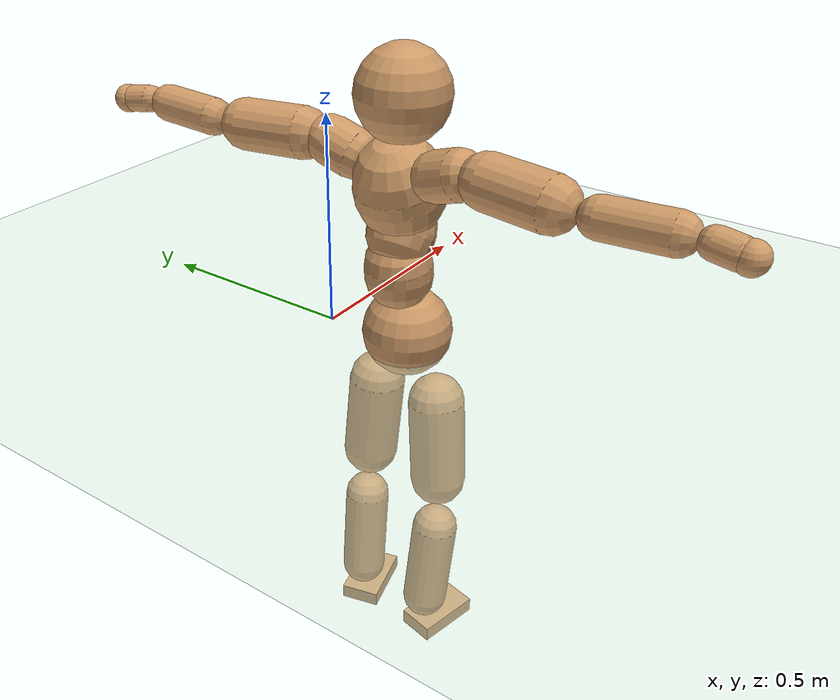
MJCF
<mujoco model="humanoid">
  <compiler coordinate="local"/>
  <default>
    <joint damping="0.0" armature="0.01" stiffness="0.0" limited="true"/>
    <geom conaffinity="1" condim="3" contype="7" margin="0.001" rgba="0.8 0.6 .4 1"/>
  </default>
  <asset>
    <texture type="skybox" builtin="gradient" rgb1=".4 .5 .6" rgb2="0 0 0" width="100" height="100"/>
    <texture builtin="flat" height="1278" mark="cross" markrgb="1 1 1" name="texgeom" random="0.01" rgb1="0.8 0.6 0.4" rgb2="0.8 0.6 0.4" type="cube" width="127"/>
    <texture builtin="checker" height="100" name="texplane" rgb1="0 0 0" rgb2="0.8 0.8 0.8" type="2d" width="100"/>
    <material name="MatPlane" reflectance="0.5" shininess="1" specular="1" texrepeat="60 60" texture="texplane"/>
    <material name="geom" texture="texgeom" texuniform="true"/>
  </asset>
  <worldbody>
    <light cutoff="100" diffuse="1 1 1" dir="-0 0 -1.3" directional="true" exponent="1" pos="0 0 1.3" specular=".1 .1 .1"/>
    <geom conaffinity="1" condim="3" name="floor" pos="0 0 0" rgba="0.8 0.9 0.8 1" size="100 100 .2" type="plane" material="MatPlane"/>
    <body name="Pelvis" pos="-0 -0.2166 0.0436">
      <freejoint name="Pelvis"/>
      <geom type="sphere" contype="1" conaffinity="1" density="500" size="0.1030" pos="0.0000 0.0000 0.0000" name="Pelvis"/>
      <body name="L_Hip" pos="0.0027 0.0787 -0.0914">
        <joint name="L_Hip_x" type="hinge" pos="0 0 0" axis="1 0 0" stiffness="800" damping="80" armature="0.02" range="-180.0000 180.0000"/>
        <joint name="L_Hip_y" type="hinge" pos="0 0 0" axis="0 1 0" stiffness="800" damping="80" armature="0.02" range="-180.0000 180.0000"/>
        <joint name="L_Hip_z" type="hinge" pos="0 0 0" axis="0 0 1" stiffness="800" damping="80" armature="0.02" range="-180.0000 180.0000"/>
        <geom type="capsule" contype="1" conaffinity="1" density="500" fromto="-0.0029 0.0050 -0.0695 -0.0116 0.0201 -0.2781" size="0.0661" name="L_Hip"/>
        <body name="L_Knee" pos="-0.0145 0.0251 -0.3476">
          <joint name="L_Knee_x" type="hinge" pos="0 0 0" axis="1 0 0" stiffness="800" damping="80" armature="0.02" range="-180.0000 180.0000"/>
          <joint name="L_Knee_y" type="hinge" pos="0 0 0" axis="0 1 0" stiffness="800" damping="80" armature="0.02" range="-180.0000 180.0000"/>
          <joint name="L_Knee_z" type="hinge" pos="0 0 0" axis="0 0 1" stiffness="800" damping="80" armature="0.02" range="-180.0000 180.0000"/>
          <geom type="capsule" contype="1" conaffinity="1" density="500" fromto="-0.0090 -0.0019 -0.0730 -0.0359 -0.0074 -0.2921" size="0.0547" name="L_Knee"/>
          <body name="L_Ankle" pos="-0.0449 -0.0093 -0.3651">
            <joint name="L_Ankle_x" type="hinge" pos="0 0 0" axis="1 0 0" stiffness="800" damping="80" armature="0.02" range="-180.0000 180.0000"/>
            <joint name="L_Ankle_y" type="hinge" pos="0 0 0" axis="0 1 0" stiffness="800" damping="80" armature="0.02" range="-180.0000 180.0000"/>
            <joint name="L_Ankle_z" type="hinge" pos="0 0 0" axis="0 0 1" stiffness="800" damping="80" armature="0.02" range="-180.0000 180.0000"/>
            <geom type="box" contype="1" conaffinity="1" density="500" pos="0.0549 0.0140 -0.0266" size="0.0797 0.0484 0.0191" quat="0.9922 0.0000 0.0000 0.1245" name="L_Ankle"/>
            <body name="L_Toe" pos="0.1097 0.028 -0.0531">
              <joint name="L_Toe_x" type="hinge" pos="0 0 0" axis="1 0 0" stiffness="500" damping="50" armature="0.02" range="-180.0000 180.0000"/>
              <joint name="L_Toe_y" type="hinge" pos="0 0 0" axis="0 1 0" stiffness="500" damping="50" armature="0.02" range="-180.0000 180.0000"/>
              <joint name="L_Toe_z" type="hinge" pos="0 0 0" axis="0 0 1" stiffness="500" damping="50" armature="0.02" range="-180.0000 180.0000"/>
              <geom type="box" contype="1" conaffinity="1" density="500" pos="0.0000 0.0000 0.0268" size="0.001 0.0024 0.001" quat="0.9914 0.0000 0.0000 0.1307" name="L_Toe"/>
            </body>
          </body>
        </body>
      </body>
      <body name="R_Hip" pos="0.0046 -0.0766 -0.0918">
        <joint name="R_Hip_x" type="hinge" pos="0 0 0" axis="1 0 0" stiffness="800" damping="80" armature="0.02" range="-180.0000 180.0000"/>
        <joint name="R_Hip_y" type="hinge" pos="0 0 0" axis="0 1 0" stiffness="800" damping="80" armature="0.02" range="-180.0000 180.0000"/>
        <joint name="R_Hip_z" type="hinge" pos="0 0 0" axis="0 0 1" stiffness="800" damping="80" armature="0.02" range="-180.0000 180.0000"/>
        <geom type="capsule" contype="1" conaffinity="1" density="500" fromto="-0.0032 -0.0062 -0.0708 -0.0128 -0.0247 -0.2831" size="0.0654" name="R_Hip"/>
        <body name="R_Knee" pos="-0.016 -0.0309 -0.3539">
          <joint name="R_Knee_x" type="hinge" pos="0 0 0" axis="1 0 0" stiffness="800" damping="80" armature="0.02" range="-180.0000 180.0000"/>
          <joint name="R_Knee_y" type="hinge" pos="0 0 0" axis="0 1 0" stiffness="800" damping="80" armature="0.02" range="-180.0000 180.0000"/>
          <joint name="R_Knee_z" type="hinge" pos="0 0 0" axis="0 0 1" stiffness="800" damping="80" armature="0.02" range="-180.0000 180.0000"/>
          <geom type="capsule" contype="1" conaffinity="1" density="500" fromto="-0.0088 0.0023 -0.0734 -0.0351 0.0091 -0.2935" size="0.0548" name="R_Knee"/>
          <body name="R_Ankle" pos="-0.0439 0.0113 -0.3668">
            <joint name="R_Ankle_x" type="hinge" pos="0 0 0" axis="1 0 0" stiffness="800" damping="80" armature="0.02" range="-180.0000 180.0000"/>
            <joint name="R_Ankle_y" type="hinge" pos="0 0 0" axis="0 1 0" stiffness="800" damping="80" armature="0.02" range="-180.0000 180.0000"/>
            <joint name="R_Ankle_z" type="hinge" pos="0 0 0" axis="0 0 1" stiffness="800" damping="80" armature="0.02" range="-180.0000 180.0000"/>
            <geom type="box" contype="1" conaffinity="1" density="500" pos="0.0567 -0.0126 -0.0227" size="0.08 0.0454 0.0198" quat="0.9941 0.0000 0.0000 -0.1089" name="R_Ankle"/>
            <body name="R_Toe" pos="0.1133 -0.0251 -0.0454">
              <joint name="R_Toe_x" type="hinge" pos="0 0 0" axis="1 0 0" stiffness="500" damping="50" armature="0.02" range="-180.0000 180.0000"/>
              <joint name="R_Toe_y" type="hinge" pos="0 0 0" axis="0 1 0" stiffness="500" damping="50" armature="0.02" range="-180.0000 180.0000"/>
              <joint name="R_Toe_z" type="hinge" pos="0 0 0" axis="0 0 1" stiffness="500" damping="50" armature="0.02" range="-180.0000 180.0000"/>
              <geom type="box" contype="1" conaffinity="1" density="500" pos="0.0000 0.0000 0.0242" size="0.0009 0.0023 0.0011" quat="0.9951 0.0000 0.0000 -0.0988" name="R_Toe"/>
            </body>
          </body>
        </body>
      </body>
      <body name="Torso" pos="-0.0349 -0.0026 0.1064">
        <joint name="Torso_x" type="hinge" pos="0 0 0" axis="1 0 0" stiffness="1000" damping="100" armature="0.02" range="-180.0000 180.0000"/>
        <joint name="Torso_y" type="hinge" pos="0 0 0" axis="0 1 0" stiffness="1000" damping="100" armature="0.02" range="-180.0000 180.0000"/>
        <joint name="Torso_z" type="hinge" pos="0 0 0" axis="0 0 1" stiffness="1000" damping="100" armature="0.02" range="-180.0000 180.0000"/>
        <geom type="capsule" contype="1" conaffinity="1" density="500" fromto="-0.0044 0.0019 0.0738 -0.0029 0.0013 0.0492" size="0.075144" name="Torso"/>
        <body name="Spine" pos="-0.0073 0.0032 0.1229">
          <joint name="Spine_x" type="hinge" pos="0 0 0" axis="1 0 0" stiffness="1000" damping="100" armature="0.02" range="-180.0000 180.0000"/>
          <joint name="Spine_y" type="hinge" pos="0 0 0" axis="0 1 0" stiffness="1000" damping="100" armature="0.02" range="-180.0000 180.0000"/>
          <joint name="Spine_z" type="hinge" pos="0 0 0" axis="0 0 1" stiffness="1000" damping="100" armature="0.02" range="-180.0000 180.0000"/>
          <geom type="capsule" contype="1" conaffinity="1" density="500" fromto="0.0192 0.0012 0.0293 0.0128 0.0008 0.0195" size="0.074865" name="Spine"/>
          <body name="Chest" pos="0.032 0.002 0.0489">
            <joint name="Chest_x" type="hinge" pos="0 0 0" axis="1 0 0" stiffness="1000" damping="100" armature="0.02" range="-180.0000 180.0000"/>
            <joint name="Chest_y" type="hinge" pos="0 0 0" axis="0 1 0" stiffness="1000" damping="100" armature="0.02" range="-180.0000 180.0000"/>
            <joint name="Chest_z" type="hinge" pos="0 0 0" axis="0 0 1" stiffness="1000" damping="100" armature="0.02" range="-180.0000 180.0000"/>
            <geom type="capsule" contype="1" conaffinity="1" density="500" fromto="-0.0284 -0.0002 0.0901 -0.0190 -0.0001 0.0601" size="0.096999" name="Chest"/>
            <body name="Neck" pos="-0.0587 0.0001 0.2081">
              <joint name="Neck_x" type="hinge" pos="0 0 0" axis="1 0 0" stiffness="500" damping="50" armature="0.02" range="-180.0000 180.0000"/>
              <joint name="Neck_y" type="hinge" pos="0 0 0" axis="0 1 0" stiffness="500" damping="50" armature="0.02" range="-180.0000 180.0000"/>
              <joint name="Neck_z" type="hinge" pos="0 0 0" axis="0 0 1" stiffness="500" damping="50" armature="0.02" range="-180.0000 180.0000"/>
              <geom type="capsule" contype="1" conaffinity="1" density="500" fromto="0.0091 0.0001 0.0108 0.0364 0.0003 0.0434" size="0.039339" name="Neck"/>
              <body name="Head" pos="0.0455 0.0004 0.0542">
                <joint name="Head_x" type="hinge" pos="0 0 0" axis="1 0 0" stiffness="500" damping="50" armature="0.02" range="-180.0000 180.0000"/>
                <joint name="Head_y" type="hinge" pos="0 0 0" axis="0 1 0" stiffness="500" damping="50" armature="0.02" range="-180.0000 180.0000"/>
                <joint name="Head_z" type="hinge" pos="0 0 0" axis="0 0 1" stiffness="500" damping="50" armature="0.02" range="-180.0000 180.0000"/>
                <geom type="sphere" contype="1" conaffinity="1" density="500" size="0.1001" pos="0.0000 0.0000 0.0000" name="Head"/>
              </body>
            </body>
            <body name="L_Thorax" pos="-0.0386 0.0833 0.1225">
              <joint name="L_Thorax_x" type="hinge" pos="0 0 0" axis="1 0 0" stiffness="500" damping="50" armature="0.02" range="-180.0000 180.0000"/>
              <joint name="L_Thorax_y" type="hinge" pos="0 0 0" axis="0 1 0" stiffness="500" damping="50" armature="0.02" range="-180.0000 180.0000"/>
              <joint name="L_Thorax_z" type="hinge" pos="0 0 0" axis="0 0 1" stiffness="500" damping="50" armature="0.02" range="-180.0000 180.0000"/>
              <geom type="capsule" contype="1" conaffinity="1" density="500" fromto="-0.0023 0.0179 0.0065 -0.0091 0.0715 0.0259" size="0.0535" name="L_Thorax"/>
              <body name="L_Shoulder" pos="-0.0114 0.0893 0.0324">
                <joint name="L_Shoulder_x" type="hinge" pos="0 0 0" axis="1 0 0" stiffness="500" damping="50" armature="0.02" range="-720.0000 720.0000"/>
                <joint name="L_Shoulder_y" type="hinge" pos="0 0 0" axis="0 1 0" stiffness="500" damping="50" armature="0.02" range="-720.0000 720.0000"/>
                <joint name="L_Shoulder_z" type="hinge" pos="0 0 0" axis="0 0 1" stiffness="500" damping="50" armature="0.02" range="-720.0000 720.0000"/>
                <geom type="capsule" contype="1" conaffinity="1" density="500" fromto="-0.0060 0.0475 -0.0014 -0.0240 0.1902 -0.0057" size="0.056" name="L_Shoulder"/>
                <body name="L_Elbow" pos="-0.0299 0.2377 -0.0072">
                  <joint name="L_Elbow_x" type="hinge" pos="0 0 0" axis="1 0 0" stiffness="500" damping="50" armature="0.02" range="-720.0000 720.0000"/>
                  <joint name="L_Elbow_y" type="hinge" pos="0 0 0" axis="0 1 0" stiffness="500" damping="50" armature="0.02" range="-720.0000 720.0000"/>
                  <joint name="L_Elbow_z" type="hinge" pos="0 0 0" axis="0 0 1" stiffness="500" damping="50" armature="0.02" range="-720.0000 720.0000"/>
                  <geom type="capsule" contype="1" conaffinity="1" density="500" fromto="0.0003 0.0453 0.0018 0.0014 0.1811 0.0070" size="0.0412" name="L_Elbow"/>
                  <body name="L_Wrist" pos="0.0017 0.2263 0.0088">
                    <joint name="L_Wrist_x" type="hinge" pos="0 0 0" axis="1 0 0" stiffness="300" damping="30" armature="0.02" range="-180.0000 180.0000"/>
                    <joint name="L_Wrist_y" type="hinge" pos="0 0 0" axis="0 1 0" stiffness="300" damping="30" armature="0.02" range="-180.0000 180.0000"/>
                    <joint name="L_Wrist_z" type="hinge" pos="0 0 0" axis="0 0 1" stiffness="300" damping="30" armature="0.02" range="-180.0000 180.0000"/>
                    <geom type="capsule" contype="1" conaffinity="1" density="500" fromto="-0.0026 0.0157 -0.0019 -0.0102 0.0627 -0.0075" size="0.0302" name="L_Wrist"/>
                    <body name="L_Hand" pos="-0.0128 0.0783 -0.0093">
                      <joint name="L_Hand_x" type="hinge" pos="0 0 0" axis="1 0 0" stiffness="300" damping="30" armature="0.02" range="-180.0000 180.0000"/>
                      <joint name="L_Hand_y" type="hinge" pos="0 0 0" axis="0 1 0" stiffness="300" damping="30" armature="0.02" range="-180.0000 180.0000"/>
                      <joint name="L_Hand_z" type="hinge" pos="0 0 0" axis="0 0 1" stiffness="300" damping="30" armature="0.02" range="-180.0000 180.0000"/>
                      <geom type="sphere" contype="1" conaffinity="1" density="500" size="0.0318" pos="0.0000 0.0000 0.0000" name="L_Hand"/>
                    </body>
                  </body>
                </body>
              </body>
            </body>
            <body name="R_Thorax" pos="-0.0449 -0.0844 0.1197">
              <joint name="R_Thorax_x" type="hinge" pos="0 0 0" axis="1 0 0" stiffness="500" damping="50" armature="0.02" range="-180.0000 180.0000"/>
              <joint name="R_Thorax_y" type="hinge" pos="0 0 0" axis="0 1 0" stiffness="500" damping="50" armature="0.02" range="-180.0000 180.0000"/>
              <joint name="R_Thorax_z" type="hinge" pos="0 0 0" axis="0 0 1" stiffness="500" damping="50" armature="0.02" range="-180.0000 180.0000"/>
              <geom type="capsule" contype="1" conaffinity="1" density="500" fromto="-0.0029 -0.0188 0.0065 -0.0116 -0.0753 0.0259" size="0.0526" name="R_Thorax"/>
              <body name="R_Shoulder" pos="-0.0145 -0.0941 0.0324">
                <joint name="R_Shoulder_x" type="hinge" pos="0 0 0" axis="1 0 0" stiffness="500" damping="50" armature="0.02" range="-720.0000 720.0000"/>
                <joint name="R_Shoulder_y" type="hinge" pos="0 0 0" axis="0 1 0" stiffness="500" damping="50" armature="0.02" range="-720.0000 720.0000"/>
                <joint name="R_Shoulder_z" type="hinge" pos="0 0 0" axis="0 0 1" stiffness="500" damping="50" armature="0.02" range="-720.0000 720.0000"/>
                <geom type="capsule" contype="1" conaffinity="1" density="500" fromto="-0.0047 -0.0470 -0.0019 -0.0187 -0.1882 -0.0075" size="0.0569" name="R_Shoulder"/>
                <body name="R_Elbow" pos="-0.0234 -0.2352 -0.0094">
                  <joint name="R_Elbow_x" type="hinge" pos="0 0 0" axis="1 0 0" stiffness="500" damping="50" armature="0.02" range="-720.0000 720.0000"/>
                  <joint name="R_Elbow_y" type="hinge" pos="0 0 0" axis="0 1 0" stiffness="500" damping="50" armature="0.02" range="-720.0000 720.0000"/>
                  <joint name="R_Elbow_z" type="hinge" pos="0 0 0" axis="0 0 1" stiffness="500" damping="50" armature="0.02" range="-720.0000 720.0000"/>
                  <geom type="capsule" contype="1" conaffinity="1" density="500" fromto="-0.0000 -0.0466 0.0022 -0.0000 -0.1864 0.0090" size="0.0412" name="R_Elbow"/>
                  <body name="R_Wrist" pos="0 -0.2331 0.0112">
                    <joint name="R_Wrist_x" type="hinge" pos="0 0 0" axis="1 0 0" stiffness="300" damping="30" armature="0.02" range="-180.0000 180.0000"/>
                    <joint name="R_Wrist_y" type="hinge" pos="0 0 0" axis="0 1 0" stiffness="300" damping="30" armature="0.02" range="-180.0000 180.0000"/>
                    <joint name="R_Wrist_z" type="hinge" pos="0 0 0" axis="0 0 1" stiffness="300" damping="30" armature="0.02" range="-180.0000 180.0000"/>
                    <geom type="capsule" contype="1" conaffinity="1" density="500" fromto="-0.0020 -0.0157 -0.0014 -0.0082 -0.0629 -0.0055" size="0.0308" name="R_Wrist"/>
                    <body name="R_Hand" pos="-0.0102 -0.0786 -0.0069">
                      <joint name="R_Hand_x" type="hinge" pos="0 0 0" axis="1 0 0" stiffness="300" damping="30" armature="0.02" range="-180.0000 180.0000"/>
                      <joint name="R_Hand_y" type="hinge" pos="0 0 0" axis="0 1 0" stiffness="300" damping="30" armature="0.02" range="-180.0000 180.0000"/>
                      <joint name="R_Hand_z" type="hinge" pos="0 0 0" axis="0 0 1" stiffness="300" damping="30" armature="0.02" range="-180.0000 180.0000"/>
                      <geom type="sphere" contype="1" conaffinity="1" density="500" size="0.0319" pos="0.0000 0.0000 0.0000" name="R_Hand"/>
                    </body>
                  </body>
                </body>
              </body>
            </body>
          </body>
        </body>
      </body>
    </body>
  </worldbody>
  <actuator>
    <motor name="L_Hip_x" joint="L_Hip_x" gear="500"/>
    <motor name="L_Hip_y" joint="L_Hip_y" gear="500"/>
    <motor name="L_Hip_z" joint="L_Hip_z" gear="500"/>
    <motor name="L_Knee_x" joint="L_Knee_x" gear="500"/>
    <motor name="L_Knee_y" joint="L_Knee_y" gear="500"/>
    <motor name="L_Knee_z" joint="L_Knee_z" gear="500"/>
    <motor name="L_Ankle_x" joint="L_Ankle_x" gear="500"/>
    <motor name="L_Ankle_y" joint="L_Ankle_y" gear="500"/>
    <motor name="L_Ankle_z" joint="L_Ankle_z" gear="500"/>
    <motor name="L_Toe_x" joint="L_Toe_x" gear="500"/>
    <motor name="L_Toe_y" joint="L_Toe_y" gear="500"/>
    <motor name="L_Toe_z" joint="L_Toe_z" gear="500"/>
    <motor name="R_Hip_x" joint="R_Hip_x" gear="500"/>
    <motor name="R_Hip_y" joint="R_Hip_y" gear="500"/>
    <motor name="R_Hip_z" joint="R_Hip_z" gear="500"/>
    <motor name="R_Knee_x" joint="R_Knee_x" gear="500"/>
    <motor name="R_Knee_y" joint="R_Knee_y" gear="500"/>
    <motor name="R_Knee_z" joint="R_Knee_z" gear="500"/>
    <motor name="R_Ankle_x" joint="R_Ankle_x" gear="500"/>
    <motor name="R_Ankle_y" joint="R_Ankle_y" gear="500"/>
    <motor name="R_Ankle_z" joint="R_Ankle_z" gear="500"/>
    <motor name="R_Toe_x" joint="R_Toe_x" gear="500"/>
    <motor name="R_Toe_y" joint="R_Toe_y" gear="500"/>
    <motor name="R_Toe_z" joint="R_Toe_z" gear="500"/>
    <motor name="Torso_x" joint="Torso_x" gear="500"/>
    <motor name="Torso_y" joint="Torso_y" gear="500"/>
    <motor name="Torso_z" joint="Torso_z" gear="500"/>
    <motor name="Spine_x" joint="Spine_x" gear="500"/>
    <motor name="Spine_y" joint="Spine_y" gear="500"/>
    <motor name="Spine_z" joint="Spine_z" gear="500"/>
    <motor name="Chest_x" joint="Chest_x" gear="500"/>
    <motor name="Chest_y" joint="Chest_y" gear="500"/>
    <motor name="Chest_z" joint="Chest_z" gear="500"/>
    <motor name="Neck_x" joint="Neck_x" gear="500"/>
    <motor name="Neck_y" joint="Neck_y" gear="500"/>
    <motor name="Neck_z" joint="Neck_z" gear="500"/>
    <motor name="Head_x" joint="Head_x" gear="500"/>
    <motor name="Head_y" joint="Head_y" gear="500"/>
    <motor name="Head_z" joint="Head_z" gear="500"/>
    <motor name="L_Thorax_x" joint="L_Thorax_x" gear="500"/>
    <motor name="L_Thorax_y" joint="L_Thorax_y" gear="500"/>
    <motor name="L_Thorax_z" joint="L_Thorax_z" gear="500"/>
    <motor name="L_Shoulder_x" joint="L_Shoulder_x" gear="500"/>
    <motor name="L_Shoulder_y" joint="L_Shoulder_y" gear="500"/>
    <motor name="L_Shoulder_z" joint="L_Shoulder_z" gear="500"/>
    <motor name="L_Elbow_x" joint="L_Elbow_x" gear="500"/>
    <motor name="L_Elbow_y" joint="L_Elbow_y" gear="500"/>
    <motor name="L_Elbow_z" joint="L_Elbow_z" gear="500"/>
    <motor name="L_Wrist_x" joint="L_Wrist_x" gear="500"/>
    <motor name="L_Wrist_y" joint="L_Wrist_y" gear="500"/>
    <motor name="L_Wrist_z" joint="L_Wrist_z" gear="500"/>
    <motor name="L_Hand_x" joint="L_Hand_x" gear="500"/>
    <motor name="L_Hand_y" joint="L_Hand_y" gear="500"/>
    <motor name="L_Hand_z" joint="L_Hand_z" gear="500"/>
    <motor name="R_Thorax_x" joint="R_Thorax_x" gear="500"/>
    <motor name="R_Thorax_y" joint="R_Thorax_y" gear="500"/>
    <motor name="R_Thorax_z" joint="R_Thorax_z" gear="500"/>
    <motor name="R_Shoulder_x" joint="R_Shoulder_x" gear="500"/>
    <motor name="R_Shoulder_y" joint="R_Shoulder_y" gear="500"/>
    <motor name="R_Shoulder_z" joint="R_Shoulder_z" gear="500"/>
    <motor name="R_Elbow_x" joint="R_Elbow_x" gear="500"/>
    <motor name="R_Elbow_y" joint="R_Elbow_y" gear="500"/>
    <motor name="R_Elbow_z" joint="R_Elbow_z" gear="500"/>
    <motor name="R_Wrist_x" joint="R_Wrist_x" gear="500"/>
    <motor name="R_Wrist_y" joint="R_Wrist_y" gear="500"/>
    <motor name="R_Wrist_z" joint="R_Wrist_z" gear="500"/>
    <motor name="R_Hand_x" joint="R_Hand_x" gear="500"/>
    <motor name="R_Hand_y" joint="R_Hand_y" gear="500"/>
    <motor name="R_Hand_z" joint="R_Hand_z" gear="500"/>
  </actuator>
  <contact>
    <exclude body1="Torso" body2="Chest"/>
    <exclude body1="Head" body2="Chest"/>
    <exclude body1="R_Knee" body2="R_Toe"/>
    <exclude body1="R_Knee" body2="L_Ankle"/>
    <exclude body1="R_Knee" body2="L_Toe"/>
    <exclude body1="L_Knee" body2="L_Toe"/>
    <exclude body1="L_Knee" body2="R_Ankle"/>
    <exclude body1="L_Knee" body2="R_Toe"/>
    <exclude body1="L_Shoulder" body2="Chest"/>
    <exclude body1="R_Shoulder" body2="Chest"/>
  </contact>
  <sensor/>
  <size njmax="700" nconmax="700"/>
</mujoco>
